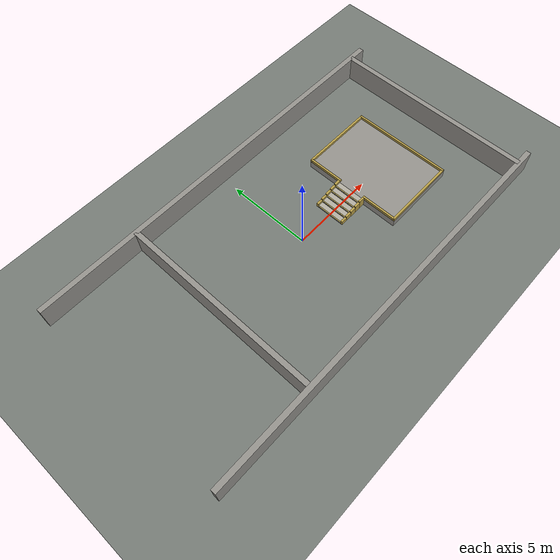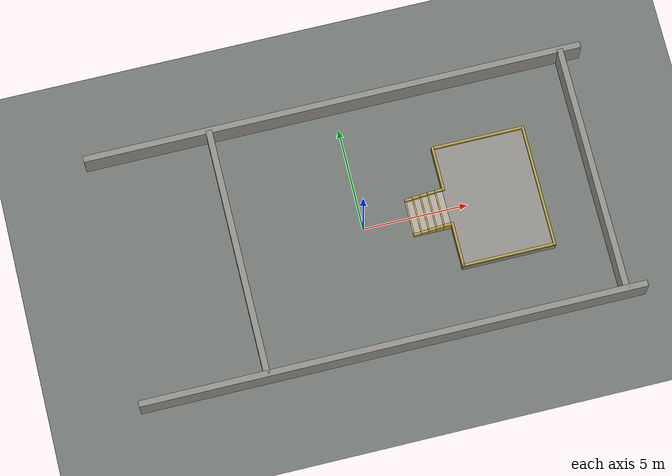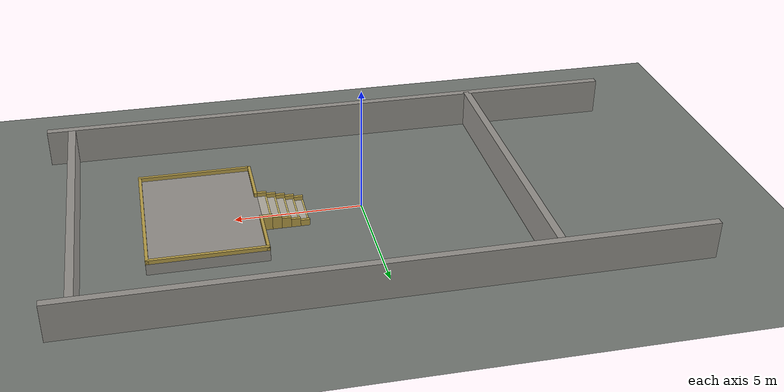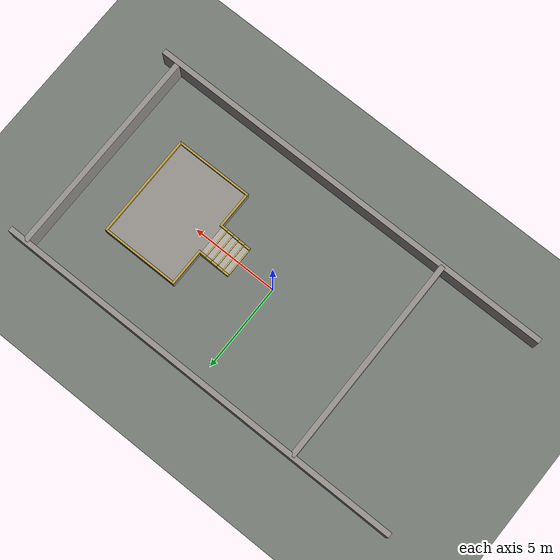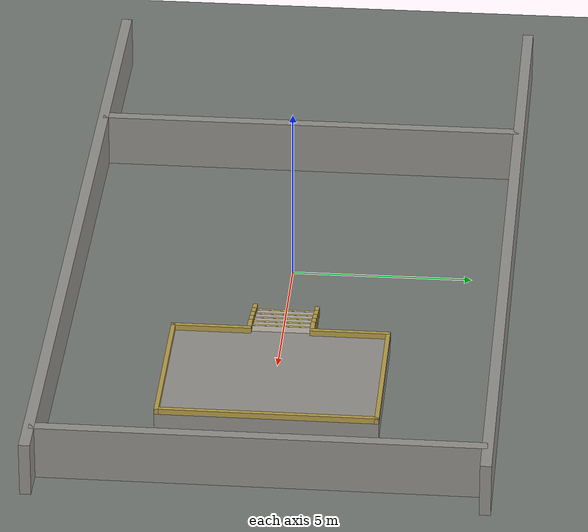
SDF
<?xml version="1.0"?>
<!-- Generated by tools/make_room.py - do not edit by hand. -->
<sdf version="1.6">
  <world name="stair_room">
    <scene><ambient>0.62 0.62 0.64 1</ambient>
      <background>0.66 0.72 0.82 1</background><shadows>true</shadows></scene>
    <light name="sun" type="directional"><cast_shadows>true</cast_shadows>
      <pose>0 0 14 0 0 0</pose><diffuse>0.90 0.88 0.83 1</diffuse>
      <specular>0.18 0.18 0.17 1</specular>
      <direction>-0.42 0.34 -0.84</direction></light>
    <light name="fill" type="directional"><cast_shadows>false</cast_shadows>
      <pose>0 0 16 0 0 0</pose><diffuse>0.34 0.36 0.42 1</diffuse>
      <specular>0.02 0.02 0.03 1</specular>
      <direction>0.48 -0.40 -0.78</direction></light>
    <physics type="ode"><max_step_size>0.001</max_step_size>
      <real_time_update_rate>1000</real_time_update_rate></physics>
    <model name="floor"><static>true</static><link name="l">
      <collision name="c"><geometry><plane><normal>0 0 1</normal><size>60 60</size></plane></geometry>
        <surface><friction><ode><mu>1.2</mu><mu2>1.2</mu2></ode></friction></surface></collision>
      <visual name="v"><geometry><plane><normal>0 0 1</normal><size>60 60</size></plane></geometry>
        <material><ambient>0.24 0.25 0.24 1</ambient><diffuse>0.46 0.48 0.46 1</diffuse></material></visual>
    </link></model>
    <model name="platform">
      <static>true</static>
      <pose>6.2500 0.0000 0.2250 0 0 0</pose>
      <link name="link">
        <collision name="c"><geometry><box><size>4.5000 6.0000 0.4500</size></box></geometry>
          <surface><friction><ode><mu>1.20</mu><mu2>1.20</mu2></ode></friction>
            <contact><ode><kp>1000000</kp><kd>100</kd></ode></contact></surface></collision>
        <visual name="v"><geometry><box><size>4.5000 6.0000 0.4500</size></box></geometry>
          <material><ambient>0.26 0.26 0.25 1</ambient><diffuse>0.58 0.57 0.55 1</diffuse></material></visual>
      </link>
    </model>
    <model name="step_0">
      <static>true</static>
      <pose>2.3800 0.0000 0.0450 0 0 0</pose>
      <link name="link">
        <visual name="v"><geometry><box><size>0.3600 1.6000 0.0900</size></box></geometry>
          <material><ambient>0.32 0.31 0.28 1</ambient><diffuse>0.70 0.68 0.63 1</diffuse>
            <emissive>0.17 0.17 0.16 1</emissive></material></visual>
      </link>
    </model>
    <model name="step_nosing_0">
      <static>true</static>
      <pose>2.2300 0.0000 0.0910 0 0 0</pose>
      <link name="link">
        <visual name="v"><geometry><box><size>0.0600 1.6000 0.0040</size></box></geometry>
          <material><ambient>0.39 0.35 0.19 1</ambient><diffuse>0.86 0.78 0.42 1</diffuse>
            <emissive>0.21 0.20 0.10 1</emissive></material></visual>
      </link>
    </model>
    <model name="step_1">
      <static>true</static>
      <pose>2.7400 0.0000 0.0900 0 0 0</pose>
      <link name="link">
        <visual name="v"><geometry><box><size>0.3600 1.6000 0.1800</size></box></geometry>
          <material><ambient>0.32 0.31 0.28 1</ambient><diffuse>0.70 0.68 0.63 1</diffuse>
            <emissive>0.17 0.17 0.16 1</emissive></material></visual>
      </link>
    </model>
    <model name="step_nosing_1">
      <static>true</static>
      <pose>2.5900 0.0000 0.1810 0 0 0</pose>
      <link name="link">
        <visual name="v"><geometry><box><size>0.0600 1.6000 0.0040</size></box></geometry>
          <material><ambient>0.39 0.35 0.19 1</ambient><diffuse>0.86 0.78 0.42 1</diffuse>
            <emissive>0.21 0.20 0.10 1</emissive></material></visual>
      </link>
    </model>
    <model name="step_2">
      <static>true</static>
      <pose>3.1000 0.0000 0.1350 0 0 0</pose>
      <link name="link">
        <visual name="v"><geometry><box><size>0.3600 1.6000 0.2700</size></box></geometry>
          <material><ambient>0.32 0.31 0.28 1</ambient><diffuse>0.70 0.68 0.63 1</diffuse>
            <emissive>0.17 0.17 0.16 1</emissive></material></visual>
      </link>
    </model>
    <model name="step_nosing_2">
      <static>true</static>
      <pose>2.9500 0.0000 0.2710 0 0 0</pose>
      <link name="link">
        <visual name="v"><geometry><box><size>0.0600 1.6000 0.0040</size></box></geometry>
          <material><ambient>0.39 0.35 0.19 1</ambient><diffuse>0.86 0.78 0.42 1</diffuse>
            <emissive>0.21 0.20 0.10 1</emissive></material></visual>
      </link>
    </model>
    <model name="step_3">
      <static>true</static>
      <pose>3.4600 0.0000 0.1800 0 0 0</pose>
      <link name="link">
        <visual name="v"><geometry><box><size>0.3600 1.6000 0.3600</size></box></geometry>
          <material><ambient>0.32 0.31 0.28 1</ambient><diffuse>0.70 0.68 0.63 1</diffuse>
            <emissive>0.17 0.17 0.16 1</emissive></material></visual>
      </link>
    </model>
    <model name="step_nosing_3">
      <static>true</static>
      <pose>3.3100 0.0000 0.3610 0 0 0</pose>
      <link name="link">
        <visual name="v"><geometry><box><size>0.0600 1.6000 0.0040</size></box></geometry>
          <material><ambient>0.39 0.35 0.19 1</ambient><diffuse>0.86 0.78 0.42 1</diffuse>
            <emissive>0.21 0.20 0.10 1</emissive></material></visual>
      </link>
    </model>
    <model name="step_4">
      <static>true</static>
      <pose>3.8200 0.0000 0.2250 0 0 0</pose>
      <link name="link">
        <visual name="v"><geometry><box><size>0.3600 1.6000 0.4500</size></box></geometry>
          <material><ambient>0.32 0.31 0.28 1</ambient><diffuse>0.70 0.68 0.63 1</diffuse>
            <emissive>0.17 0.17 0.16 1</emissive></material></visual>
      </link>
    </model>
    <model name="step_nosing_4">
      <static>true</static>
      <pose>3.6700 0.0000 0.4510 0 0 0</pose>
      <link name="link">
        <visual name="v"><geometry><box><size>0.0600 1.6000 0.0040</size></box></geometry>
          <material><ambient>0.39 0.35 0.19 1</ambient><diffuse>0.86 0.78 0.42 1</diffuse>
            <emissive>0.21 0.20 0.10 1</emissive></material></visual>
      </link>
    </model>
    <model name="stair_support">
      <static>true</static>
      <pose>3.1049 0.0000 0.2056 0 -0.244979 0</pose>
      <link name="link">
        <collision name="c"><geometry><box><size>1.8554 1.6000 0.0400</size></box></geometry>
          <surface><friction><ode><mu>1.2</mu><mu2>1.2</mu2></ode></friction></surface></collision>
      </link>
    </model>
    <model name="stair_kerb_s_0">
      <static>true</static>
      <pose>2.3800 -0.8600 0.1250 0 0 0</pose>
      <link name="link">
        <collision name="c"><geometry><box><size>0.3600 0.1200 0.2500</size></box></geometry>
          <surface><friction><ode><mu>1.20</mu><mu2>1.20</mu2></ode></friction>
            <contact><ode><kp>1000000</kp><kd>100</kd></ode></contact></surface></collision>
        <visual name="v"><geometry><box><size>0.3600 0.1200 0.2500</size></box></geometry>
          <material><ambient>0.32 0.28 0.13 1</ambient><diffuse>0.72 0.62 0.28 1</diffuse></material></visual>
      </link>
    </model>
    <model name="stair_kerb_s_1">
      <static>true</static>
      <pose>2.7400 -0.8600 0.1700 0 0 0</pose>
      <link name="link">
        <collision name="c"><geometry><box><size>0.3600 0.1200 0.3400</size></box></geometry>
          <surface><friction><ode><mu>1.20</mu><mu2>1.20</mu2></ode></friction>
            <contact><ode><kp>1000000</kp><kd>100</kd></ode></contact></surface></collision>
        <visual name="v"><geometry><box><size>0.3600 0.1200 0.3400</size></box></geometry>
          <material><ambient>0.32 0.28 0.13 1</ambient><diffuse>0.72 0.62 0.28 1</diffuse></material></visual>
      </link>
    </model>
    <model name="stair_kerb_s_2">
      <static>true</static>
      <pose>3.1000 -0.8600 0.2150 0 0 0</pose>
      <link name="link">
        <collision name="c"><geometry><box><size>0.3600 0.1200 0.4300</size></box></geometry>
          <surface><friction><ode><mu>1.20</mu><mu2>1.20</mu2></ode></friction>
            <contact><ode><kp>1000000</kp><kd>100</kd></ode></contact></surface></collision>
        <visual name="v"><geometry><box><size>0.3600 0.1200 0.4300</size></box></geometry>
          <material><ambient>0.32 0.28 0.13 1</ambient><diffuse>0.72 0.62 0.28 1</diffuse></material></visual>
      </link>
    </model>
    <model name="stair_kerb_s_3">
      <static>true</static>
      <pose>3.4600 -0.8600 0.2600 0 0 0</pose>
      <link name="link">
        <collision name="c"><geometry><box><size>0.3600 0.1200 0.5200</size></box></geometry>
          <surface><friction><ode><mu>1.20</mu><mu2>1.20</mu2></ode></friction>
            <contact><ode><kp>1000000</kp><kd>100</kd></ode></contact></surface></collision>
        <visual name="v"><geometry><box><size>0.3600 0.1200 0.5200</size></box></geometry>
          <material><ambient>0.32 0.28 0.13 1</ambient><diffuse>0.72 0.62 0.28 1</diffuse></material></visual>
      </link>
    </model>
    <model name="stair_kerb_s_4">
      <static>true</static>
      <pose>3.8200 -0.8600 0.3050 0 0 0</pose>
      <link name="link">
        <collision name="c"><geometry><box><size>0.3600 0.1200 0.6100</size></box></geometry>
          <surface><friction><ode><mu>1.20</mu><mu2>1.20</mu2></ode></friction>
            <contact><ode><kp>1000000</kp><kd>100</kd></ode></contact></surface></collision>
        <visual name="v"><geometry><box><size>0.3600 0.1200 0.6100</size></box></geometry>
          <material><ambient>0.32 0.28 0.13 1</ambient><diffuse>0.72 0.62 0.28 1</diffuse></material></visual>
      </link>
    </model>
    <model name="stair_kerb_n_0">
      <static>true</static>
      <pose>2.3800 0.8600 0.1250 0 0 0</pose>
      <link name="link">
        <collision name="c"><geometry><box><size>0.3600 0.1200 0.2500</size></box></geometry>
          <surface><friction><ode><mu>1.20</mu><mu2>1.20</mu2></ode></friction>
            <contact><ode><kp>1000000</kp><kd>100</kd></ode></contact></surface></collision>
        <visual name="v"><geometry><box><size>0.3600 0.1200 0.2500</size></box></geometry>
          <material><ambient>0.32 0.28 0.13 1</ambient><diffuse>0.72 0.62 0.28 1</diffuse></material></visual>
      </link>
    </model>
    <model name="stair_kerb_n_1">
      <static>true</static>
      <pose>2.7400 0.8600 0.1700 0 0 0</pose>
      <link name="link">
        <collision name="c"><geometry><box><size>0.3600 0.1200 0.3400</size></box></geometry>
          <surface><friction><ode><mu>1.20</mu><mu2>1.20</mu2></ode></friction>
            <contact><ode><kp>1000000</kp><kd>100</kd></ode></contact></surface></collision>
        <visual name="v"><geometry><box><size>0.3600 0.1200 0.3400</size></box></geometry>
          <material><ambient>0.32 0.28 0.13 1</ambient><diffuse>0.72 0.62 0.28 1</diffuse></material></visual>
      </link>
    </model>
    <model name="stair_kerb_n_2">
      <static>true</static>
      <pose>3.1000 0.8600 0.2150 0 0 0</pose>
      <link name="link">
        <collision name="c"><geometry><box><size>0.3600 0.1200 0.4300</size></box></geometry>
          <surface><friction><ode><mu>1.20</mu><mu2>1.20</mu2></ode></friction>
            <contact><ode><kp>1000000</kp><kd>100</kd></ode></contact></surface></collision>
        <visual name="v"><geometry><box><size>0.3600 0.1200 0.4300</size></box></geometry>
          <material><ambient>0.32 0.28 0.13 1</ambient><diffuse>0.72 0.62 0.28 1</diffuse></material></visual>
      </link>
    </model>
    <model name="stair_kerb_n_3">
      <static>true</static>
      <pose>3.4600 0.8600 0.2600 0 0 0</pose>
      <link name="link">
        <collision name="c"><geometry><box><size>0.3600 0.1200 0.5200</size></box></geometry>
          <surface><friction><ode><mu>1.20</mu><mu2>1.20</mu2></ode></friction>
            <contact><ode><kp>1000000</kp><kd>100</kd></ode></contact></surface></collision>
        <visual name="v"><geometry><box><size>0.3600 0.1200 0.5200</size></box></geometry>
          <material><ambient>0.32 0.28 0.13 1</ambient><diffuse>0.72 0.62 0.28 1</diffuse></material></visual>
      </link>
    </model>
    <model name="stair_kerb_n_4">
      <static>true</static>
      <pose>3.8200 0.8600 0.3050 0 0 0</pose>
      <link name="link">
        <collision name="c"><geometry><box><size>0.3600 0.1200 0.6100</size></box></geometry>
          <surface><friction><ode><mu>1.20</mu><mu2>1.20</mu2></ode></friction>
            <contact><ode><kp>1000000</kp><kd>100</kd></ode></contact></surface></collision>
        <visual name="v"><geometry><box><size>0.3600 0.1200 0.6100</size></box></geometry>
          <material><ambient>0.32 0.28 0.13 1</ambient><diffuse>0.72 0.62 0.28 1</diffuse></material></visual>
      </link>
    </model>
    <model name="kerb_front_0">
      <static>true</static>
      <pose>4.0600 -1.9000 0.5300 0 0 0</pose>
      <link name="link">
        <collision name="c"><geometry><box><size>0.1200 2.2000 0.1600</size></box></geometry>
          <surface><friction><ode><mu>1.20</mu><mu2>1.20</mu2></ode></friction>
            <contact><ode><kp>1000000</kp><kd>100</kd></ode></contact></surface></collision>
        <visual name="v"><geometry><box><size>0.1200 2.2000 0.1600</size></box></geometry>
          <material><ambient>0.32 0.28 0.13 1</ambient><diffuse>0.72 0.62 0.28 1</diffuse></material></visual>
      </link>
    </model>
    <model name="kerb_front_1">
      <static>true</static>
      <pose>4.0600 1.9000 0.5300 0 0 0</pose>
      <link name="link">
        <collision name="c"><geometry><box><size>0.1200 2.2000 0.1600</size></box></geometry>
          <surface><friction><ode><mu>1.20</mu><mu2>1.20</mu2></ode></friction>
            <contact><ode><kp>1000000</kp><kd>100</kd></ode></contact></surface></collision>
        <visual name="v"><geometry><box><size>0.1200 2.2000 0.1600</size></box></geometry>
          <material><ambient>0.32 0.28 0.13 1</ambient><diffuse>0.72 0.62 0.28 1</diffuse></material></visual>
      </link>
    </model>
    <model name="kerb_back">
      <static>true</static>
      <pose>8.4400 0.0000 0.5300 0 0 0</pose>
      <link name="link">
        <collision name="c"><geometry><box><size>0.1200 6.0000 0.1600</size></box></geometry>
          <surface><friction><ode><mu>1.20</mu><mu2>1.20</mu2></ode></friction>
            <contact><ode><kp>1000000</kp><kd>100</kd></ode></contact></surface></collision>
        <visual name="v"><geometry><box><size>0.1200 6.0000 0.1600</size></box></geometry>
          <material><ambient>0.32 0.28 0.13 1</ambient><diffuse>0.72 0.62 0.28 1</diffuse></material></visual>
      </link>
    </model>
    <model name="kerb_left">
      <static>true</static>
      <pose>6.2500 2.9400 0.5300 0 0 0</pose>
      <link name="link">
        <collision name="c"><geometry><box><size>4.5000 0.1200 0.1600</size></box></geometry>
          <surface><friction><ode><mu>1.20</mu><mu2>1.20</mu2></ode></friction>
            <contact><ode><kp>1000000</kp><kd>100</kd></ode></contact></surface></collision>
        <visual name="v"><geometry><box><size>4.5000 0.1200 0.1600</size></box></geometry>
          <material><ambient>0.32 0.28 0.13 1</ambient><diffuse>0.72 0.62 0.28 1</diffuse></material></visual>
      </link>
    </model>
    <model name="kerb_right">
      <static>true</static>
      <pose>6.2500 -2.9400 0.5300 0 0 0</pose>
      <link name="link">
        <collision name="c"><geometry><box><size>4.5000 0.1200 0.1600</size></box></geometry>
          <surface><friction><ode><mu>1.20</mu><mu2>1.20</mu2></ode></friction>
            <contact><ode><kp>1000000</kp><kd>100</kd></ode></contact></surface></collision>
        <visual name="v"><geometry><box><size>4.5000 0.1200 0.1600</size></box></geometry>
          <material><ambient>0.32 0.28 0.13 1</ambient><diffuse>0.72 0.62 0.28 1</diffuse></material></visual>
      </link>
    </model>
    <model name="wall_n">
      <static>true</static>
      <pose>0.0000 6.0000 0.7500 0 0 0</pose>
      <link name="link">
        <collision name="c"><geometry><box><size>24.0000 0.3000 1.5000</size></box></geometry>
          <surface><friction><ode><mu>1.20</mu><mu2>1.20</mu2></ode></friction>
            <contact><ode><kp>1000000</kp><kd>100</kd></ode></contact></surface></collision>
        <visual name="v"><geometry><box><size>24.0000 0.3000 1.5000</size></box></geometry>
          <material><ambient>0.26 0.26 0.25 1</ambient><diffuse>0.58 0.57 0.55 1</diffuse></material></visual>
      </link>
    </model>
    <model name="wall_s">
      <static>true</static>
      <pose>0.0000 -6.0000 0.7500 0 0 0</pose>
      <link name="link">
        <collision name="c"><geometry><box><size>24.0000 0.3000 1.5000</size></box></geometry>
          <surface><friction><ode><mu>1.20</mu><mu2>1.20</mu2></ode></friction>
            <contact><ode><kp>1000000</kp><kd>100</kd></ode></contact></surface></collision>
        <visual name="v"><geometry><box><size>24.0000 0.3000 1.5000</size></box></geometry>
          <material><ambient>0.26 0.26 0.25 1</ambient><diffuse>0.58 0.57 0.55 1</diffuse></material></visual>
      </link>
    </model>
    <model name="wall_w">
      <static>true</static>
      <pose>-6.0000 0.0000 0.7500 0 0 0</pose>
      <link name="link">
        <collision name="c"><geometry><box><size>0.3000 12.0000 1.5000</size></box></geometry>
          <surface><friction><ode><mu>1.20</mu><mu2>1.20</mu2></ode></friction>
            <contact><ode><kp>1000000</kp><kd>100</kd></ode></contact></surface></collision>
        <visual name="v"><geometry><box><size>0.3000 12.0000 1.5000</size></box></geometry>
          <material><ambient>0.26 0.26 0.25 1</ambient><diffuse>0.58 0.57 0.55 1</diffuse></material></visual>
      </link>
    </model>
    <model name="wall_e">
      <static>true</static>
      <pose>11.0000 0.0000 0.7500 0 0 0</pose>
      <link name="link">
        <collision name="c"><geometry><box><size>0.3000 12.0000 1.5000</size></box></geometry>
          <surface><friction><ode><mu>1.20</mu><mu2>1.20</mu2></ode></friction>
            <contact><ode><kp>1000000</kp><kd>100</kd></ode></contact></surface></collision>
        <visual name="v"><geometry><box><size>0.3000 12.0000 1.5000</size></box></geometry>
          <material><ambient>0.26 0.26 0.25 1</ambient><diffuse>0.58 0.57 0.55 1</diffuse></material></visual>
      </link>
    </model>
    <gui><camera name="user_camera">
      <pose>-6 -8 5 0 0.35 0.9</pose></camera></gui>
  </world>
</sdf>
